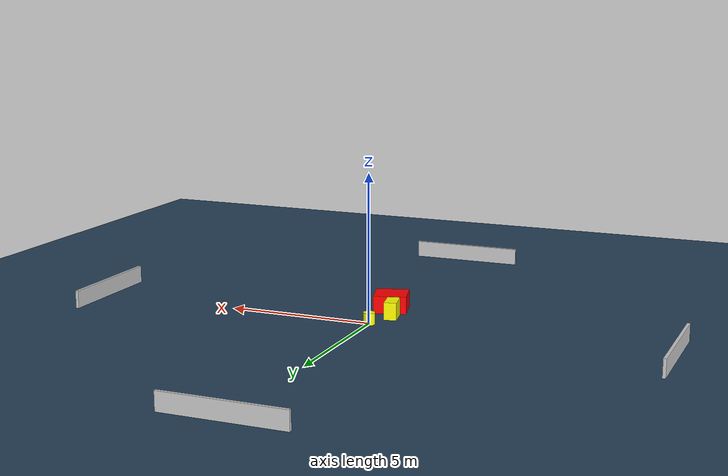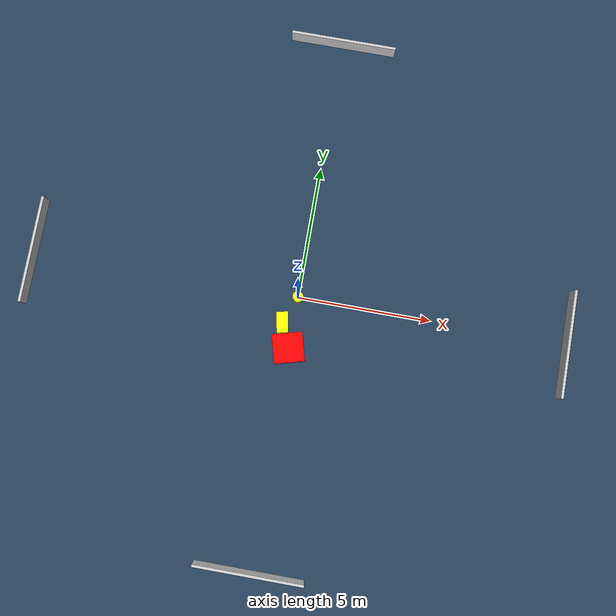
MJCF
<?xml version="1.0" ?>
<mujoco model="generated_environment">
  <option timestep="0.01" integrator="RK4" cone="elliptic"/>
  <default>
    <geom density="1"/>
  </default>
  <asset>
    <texture builtin="gradient" height="3072" name="skybox" rgb1="0.3 0.5 0.7" rgb2="0 0 0" type="skybox" width="512"/>
    <texture builtin="checker" height="300" name="groundplane" rgb1="0.2 0.3 0.4" rgb2="0.1 0.2 0.3" type="2d" width="300"/>
    <material name="groundplane" reflectance="0.2" texrepeat="5 5" texture="groundplane"/>
  </asset>
  <worldbody>
    <light dir="0 0 -1" directional="true" pos="0 0 1.5"/>
    <geom condim="3" friction="0.5 0.005 0.001" material="groundplane" name="floor" pos="0 0 0" size="0 0 0.05" type="plane"/>
    <body name="walls">
      <geom name="wall_1" condim="4" pos="-10.0 0.0 0.3" rgba="0.800000011920929 0.800000011920929 0.800000011920929 1.0" size="0.05 2.0 0.3" type="box"/>
      <geom name="wall_2" condim="4" pos="10.0 0.0 0.3" rgba="0.800000011920929 0.800000011920929 0.800000011920929 1.0" size="0.05 2.0 0.3" type="box"/>
      <geom name="wall_3" condim="4" pos="0.0 -10.0 0.3" rgba="0.800000011920929 0.800000011920929 0.800000011920929 1.0" size="2.0 0.05 0.3" type="box"/>
      <geom name="wall_4" condim="4" pos="0.0 10.0 0.3" rgba="0.800000011920929 0.800000011920929 0.800000011920929 1.0" size="2.0 0.05 0.3" type="box"/>
    </body>
    <body name="robot">
      <joint name="joint_x" type="slide" pos="0 0 0" axis="1 0 0"/>
      <joint name="joint_y" type="slide" pos="0 0 0" axis="0 1 0"/>
      <geom name="robot" type="cylinder" pos="0.0 0.0 0.2" size="0.2 0.2 0.0" mass="5.0" friction="1.0 0.005 0.0001" condim="4" rgba="1.0 1.0 0.0 1.0"/>
    </body>
    <body name="obstacle_1_movable">
      <geom name="obstacle_1_movable" condim="4" pos="-0.39472091416470423 -1.0436104890271072 0.3" euler="0 0 191.35798675346652" friction="0.0 0.005 0.001" rgba="1.0 1.0 0.0 1.0" size="0.21134491889342175 0.38179680584972925 0.3" type="box" mass="0.1"/>
      <joint type="free"/>
    </body>
    <body name="obstacle_2_static">
      <geom name="obstacle_2_static" condim="4" pos="-0.019393258153323753 -1.9261840830783519 0.3" euler="0 0 285.0447735404799" friction="0.0 0.005 0.001" rgba="1.0 0.0 0.0 1.0" size="0.5350503476605626 0.5621174193247874 0.3" type="box"/>
    </body>
  </worldbody>
  <actuator>
    <motor name="actuator_x" joint="joint_x" gear="1" ctrlrange="-1 1"/>
    <motor name="actuator_y" joint="joint_y" gear="1" ctrlrange="-1 1"/>
  </actuator>
</mujoco>
